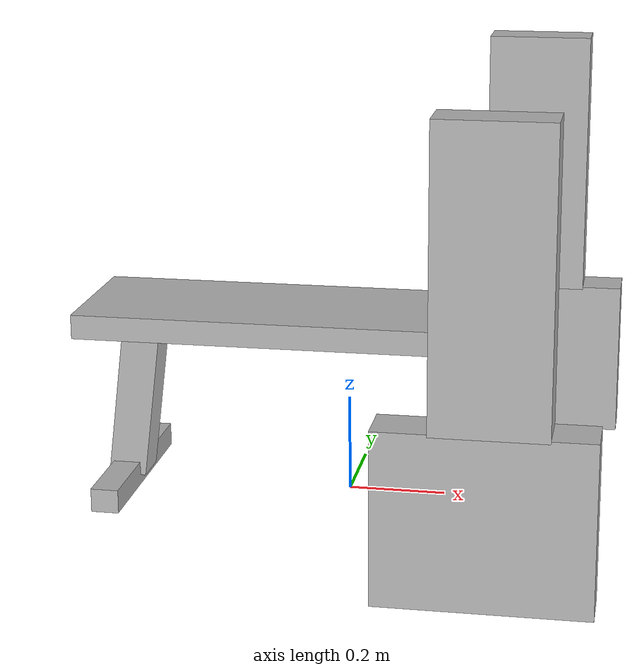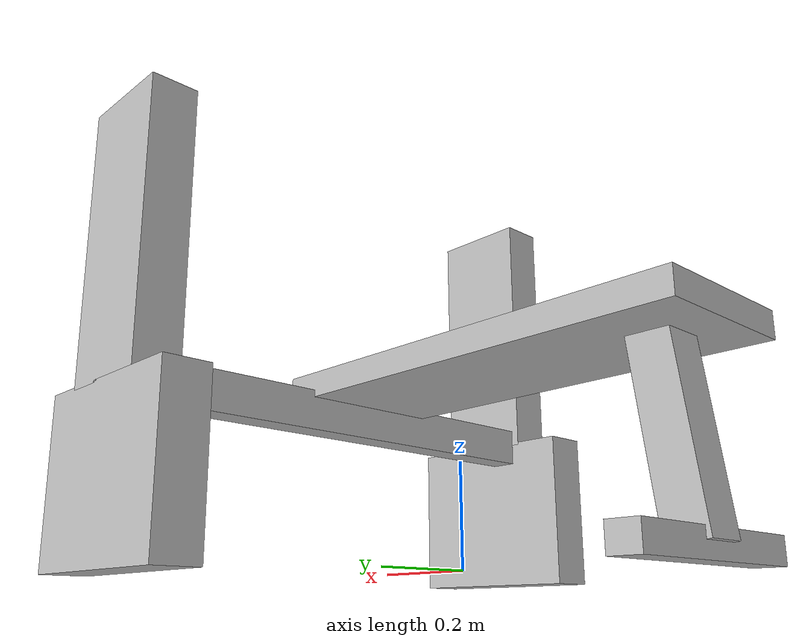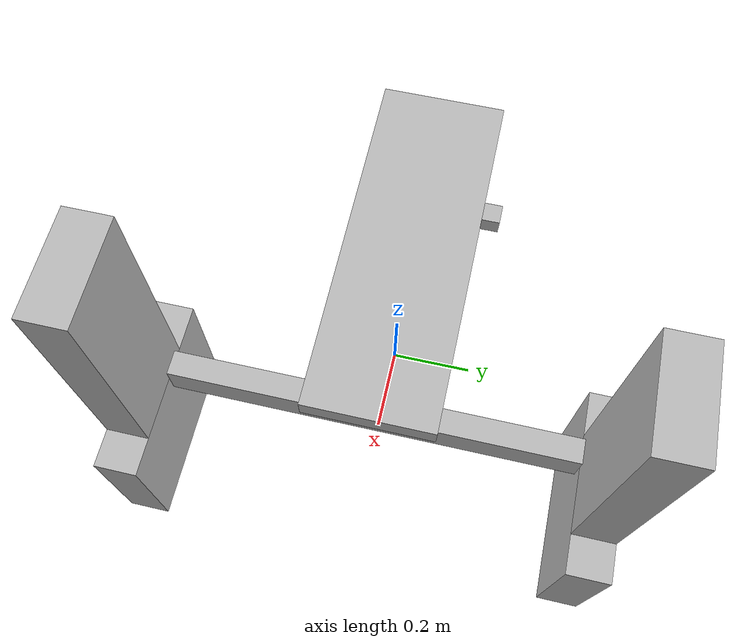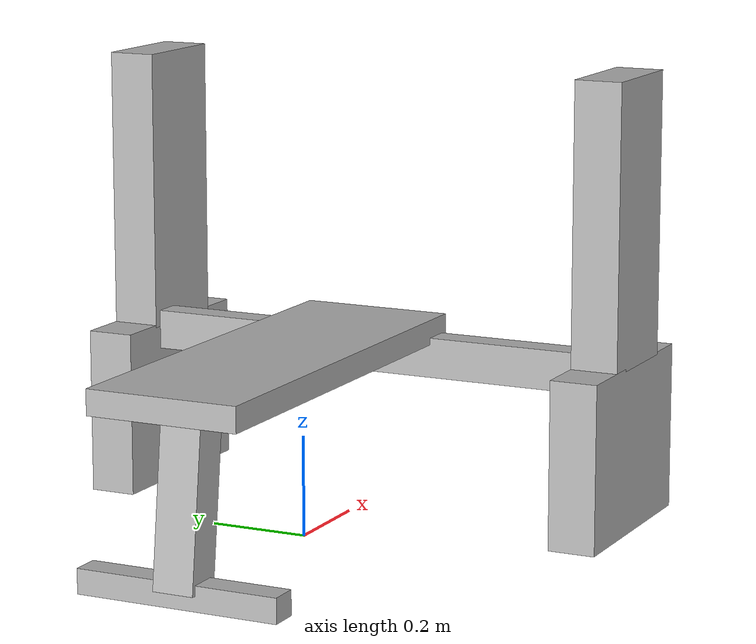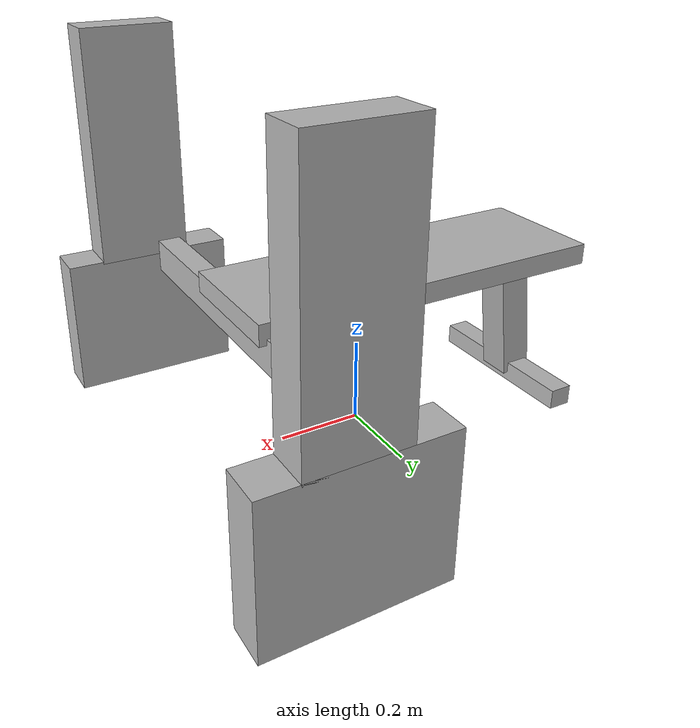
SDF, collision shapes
<?xml version="1.0" ?>
<sdf version="1.6">
  <model name="aws_robomaker_residential_FitnessEquipment_01">
    <link name="link">
      <inertial>
        <mass>80</mass>
      </inertial>
      <collision name="aws_fitnessequipment_01_collision_collider_box">
        <pose>0.343502 -0.509288 0.609574 0.0 -0.0 0.0</pose>
        <geometry>
          <box>
            <size>0.218982 0.09555 0.567864</size>
          </box>
        </geometry>
      </collision>
      <collision name="aws_fitnessequipment_01_collision_collider_box.001">
        <pose>0.334 -0.509288 0.162654 0.0 -0.0 0.0</pose>
        <geometry>
          <box>
            <size>0.407815 0.09555 0.336541</size>
          </box>
        </geometry>
      </collision>
      <collision name="aws_fitnessequipment_01_collision_collider_box.002">
        <pose>0.343502 0.511882 0.609574 0.0 -0.0 0.0</pose>
        <geometry>
          <box>
            <size>0.218982 0.09555 0.567864</size>
          </box>
        </geometry>
      </collision>
      <collision name="aws_fitnessequipment_01_collision_collider_box.003">
        <pose>0.334 0.511882 0.162654 0.0 -0.0 0.0</pose>
        <geometry>
          <box>
            <size>0.407815 0.09555 0.336541</size>
          </box>
        </geometry>
      </collision>
      <collision name="aws_fitnessequipment_01_collision_collider_box.004">
        <pose>-0.110715 -0.001014 0.370817 0.0 -0.0 0.0</pose>
        <geometry>
          <box>
            <size>0.871802 0.304509 0.049807</size>
          </box>
        </geometry>
      </collision>
      <collision name="aws_fitnessequipment_01_collision_collider_box.005">
        <pose>-0.473251 6.2e-05 0.018904 0.0 -0.0 0.0</pose>
        <geometry>
          <box>
            <size>0.057064 0.411969 0.049041</size>
          </box>
        </geometry>
      </collision>
      <collision name="aws_fitnessequipment_01_collision_collider_box.006">
        <pose>-0.45162 6.2e-05 0.190595 0.0 0.121229 0.0</pose>
        <geometry>
          <box>
            <size>0.078162 0.082193 0.344596</size>
          </box>
        </geometry>
      </collision>
      <collision name="aws_fitnessequipment_01_collision_collider_box.007">
        <pose>0.279718 6.2e-05 0.319979 0.0 -0.0 0.0</pose>
        <geometry>
          <box>
            <size>0.056511 0.945717 0.07974</size>
          </box>
        </geometry>
      </collision>
      <visual name="visual">
        <geometry>
          <mesh>
            <uri>model://aws_robomaker_residential_FitnessEquipment_01/meshes/aws_FitnessEquipment_01_visual.DAE</uri>
          </mesh>
        </geometry>
        <meta> <layer> 1 </layer></meta>
      </visual>
    </link>
  <static>1</static>
  </model>
</sdf>
